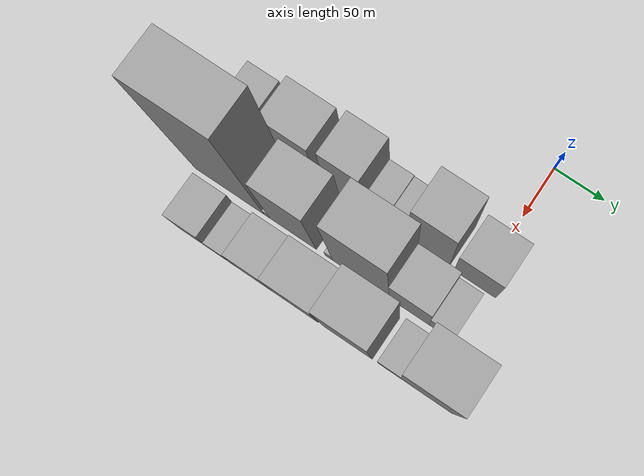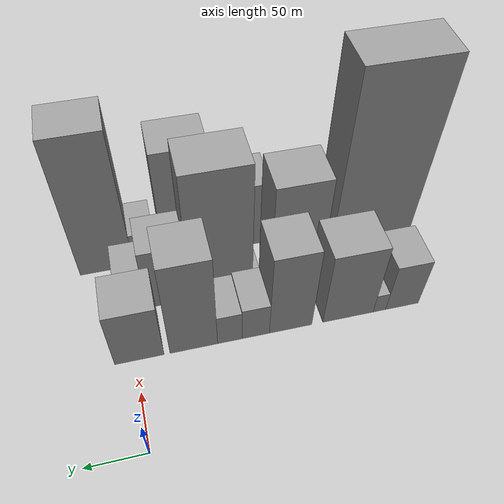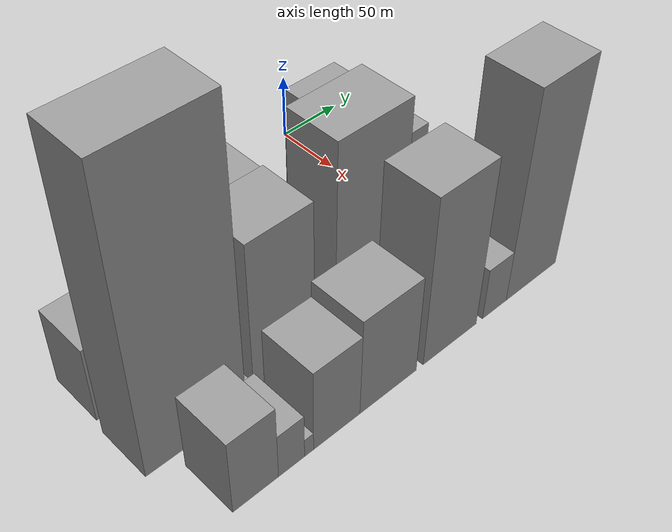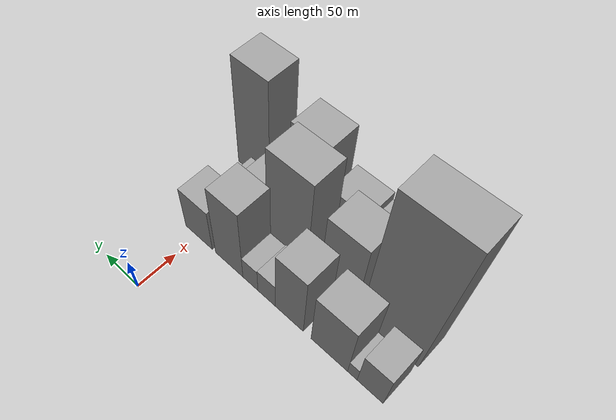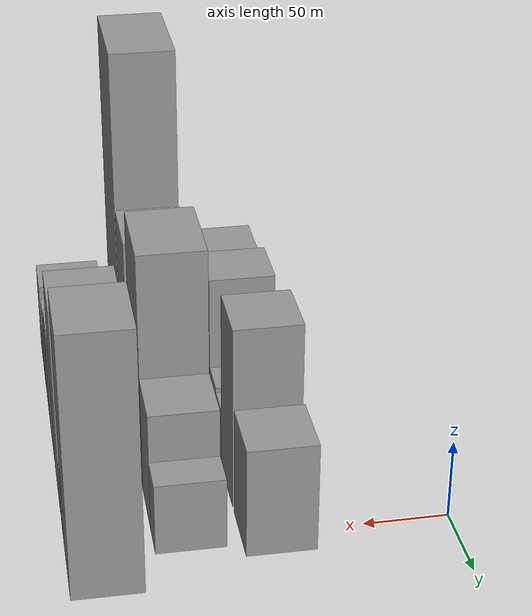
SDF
<sdf version="1.6">
 <world name="default">
  <model name="building_7">
   <static>1</static>
   <pose>100.0000 -233.9224 0 0.000000 0.000000 0.000000</pose>
   <link name="link">
    <pose>0 0 30.00 0 0 0</pose>
    <collision name="collision"><geometry><box><size>40.0000 30.6522 60.0000</size></box></geometry></collision>
    <visual name="visual">
     <cast_shadows>0</cast_shadows>
     <geometry><box><size>40.0000 30.6522 60.0000</size></box></geometry>
     <material>
      <script>
       <uri>model://grey_wall/materials/scripts</uri>
       <uri>model://grey_wall/materials/textures</uri>
       <name>vrc/grey_wall</name>
      </script>
     </material>
    </visual>
   </link>
  </model>
  <model name="building_8">
   <static>1</static>
   <pose>100.0000 -212.8381 0 0.000000 0.000000 0.000000</pose>
   <link name="link">
    <pose>0 0 12.00 0 0 0</pose>
    <collision name="collision"><geometry><box><size>40.0000 11.5164 24.0000</size></box></geometry></collision>
    <visual name="visual">
     <cast_shadows>0</cast_shadows>
     <geometry><box><size>40.0000 11.5164 24.0000</size></box></geometry>
     <material>
      <script>
       <uri>model://grey_wall/materials/scripts</uri>
       <uri>model://grey_wall/materials/textures</uri>
       <name>vrc/grey_wall</name>
      </script>
     </material>
    </visual>
   </link>
  </model>
  <model name="building_9">
   <static>1</static>
   <pose>100.0000 -184.1226 0 0.000000 0.000000 0.000000</pose>
   <link name="link">
    <pose>0 0 45.00 0 0 0</pose>
    <collision name="collision"><geometry><box><size>40.0000 45.9146 90.0000</size></box></geometry></collision>
    <visual name="visual">
     <cast_shadows>0</cast_shadows>
     <geometry><box><size>40.0000 45.9146 90.0000</size></box></geometry>
     <material>
      <script>
       <uri>model://grey_wall/materials/scripts</uri>
       <uri>model://grey_wall/materials/textures</uri>
       <name>vrc/grey_wall</name>
      </script>
     </material>
    </visual>
   </link>
  </model>
  <model name="building_10">
   <static>1</static>
   <pose>100.0000 -132.3108 0 0.000000 0.000000 0.000000</pose>
   <link name="link">
    <pose>0 0 51.00 0 0 0</pose>
    <collision name="collision"><geometry><box><size>40.0000 37.7090 102.0000</size></box></geometry></collision>
    <visual name="visual">
     <cast_shadows>0</cast_shadows>
     <geometry><box><size>40.0000 37.7090 102.0000</size></box></geometry>
     <material>
      <script>
       <uri>model://grey_wall/materials/scripts</uri>
       <uri>model://grey_wall/materials/textures</uri>
       <name>vrc/grey_wall</name>
      </script>
     </material>
    </visual>
   </link>
  </model>
  <model name="building_11">
   <static>1</static>
   <pose>100.0000 -101.5084 0 0.000000 0.000000 0.000000</pose>
   <link name="link">
    <pose>0 0 21.00 0 0 0</pose>
    <collision name="collision"><geometry><box><size>40.0000 23.8957 42.0000</size></box></geometry></collision>
    <visual name="visual">
     <cast_shadows>0</cast_shadows>
     <geometry><box><size>40.0000 23.8957 42.0000</size></box></geometry>
     <material>
      <script>
       <uri>model://grey_wall/materials/scripts</uri>
       <uri>model://grey_wall/materials/textures</uri>
       <name>vrc/grey_wall</name>
      </script>
     </material>
    </visual>
   </link>
  </model>
  <model name="building_12">
   <static>1</static>
   <pose>100.0000 -78.9548 0 0.000000 0.000000 0.000000</pose>
   <link name="link">
    <pose>0 0 19.50 0 0 0</pose>
    <collision name="collision"><geometry><box><size>40.0000 21.2116 39.0000</size></box></geometry></collision>
    <visual name="visual">
     <cast_shadows>0</cast_shadows>
     <geometry><box><size>40.0000 21.2116 39.0000</size></box></geometry>
     <material>
      <script>
       <uri>model://grey_wall/materials/scripts</uri>
       <uri>model://grey_wall/materials/textures</uri>
       <name>vrc/grey_wall</name>
      </script>
     </material>
    </visual>
   </link>
  </model>
  <model name="building_13">
   <static>1</static>
   <pose>100.0000 -48.1221 0 0.000000 0.000000 0.000000</pose>
   <link name="link">
    <pose>0 0 58.50 0 0 0</pose>
    <collision name="collision"><geometry><box><size>40.0000 40.4538 117.0000</size></box></geometry></collision>
    <visual name="visual">
     <cast_shadows>0</cast_shadows>
     <geometry><box><size>40.0000 40.4538 117.0000</size></box></geometry>
     <material>
      <script>
       <uri>model://grey_wall/materials/scripts</uri>
       <uri>model://grey_wall/materials/textures</uri>
       <name>vrc/grey_wall</name>
      </script>
     </material>
    </visual>
   </link>
  </model>
  <model name="building_14">
   <static>1</static>
   <pose>100.0000 -2.3943 0 0.000000 0.000000 0.000000</pose>
   <link name="link">
    <pose>0 0 34.50 0 0 0</pose>
    <collision name="collision"><geometry><box><size>40.0000 41.0018 69.0000</size></box></geometry></collision>
    <visual name="visual">
     <cast_shadows>0</cast_shadows>
     <geometry><box><size>40.0000 41.0018 69.0000</size></box></geometry>
     <material>
      <script>
       <uri>model://grey_wall/materials/scripts</uri>
       <uri>model://grey_wall/materials/textures</uri>
       <name>vrc/grey_wall</name>
      </script>
     </material>
    </visual>
   </link>
  </model>
  <model name="building_38">
   <static>1</static>
   <pose>149.0000 -216.0042 0 0.000000 0.000000 0.000000</pose>
   <link name="link">
    <pose>0 0 111.00 0 0 0</pose>
    <collision name="collision"><geometry><box><size>40.0000 71.0410 222.0000</size></box></geometry></collision>
    <visual name="visual">
     <cast_shadows>0</cast_shadows>
     <geometry><box><size>40.0000 71.0410 222.0000</size></box></geometry>
     <material>
      <script>
       <uri>model://grey_wall/materials/scripts</uri>
       <uri>model://grey_wall/materials/textures</uri>
       <name>vrc/grey_wall</name>
      </script>
     </material>
    </visual>
   </link>
  </model>
  <model name="building_39">
   <static>1</static>
   <pose>149.0000 -177.4119 0 0.000000 0.000000 0.000000</pose>
   <link name="link">
    <pose>0 0 7.50 0 0 0</pose>
    <collision name="collision"><geometry><box><size>40.0000 6.1436 15.0000</size></box></geometry></collision>
    <visual name="visual">
     <cast_shadows>0</cast_shadows>
     <geometry><box><size>40.0000 6.1436 15.0000</size></box></geometry>
     <material>
      <script>
       <uri>model://grey_wall/materials/scripts</uri>
       <uri>model://grey_wall/materials/textures</uri>
       <name>vrc/grey_wall</name>
      </script>
     </material>
    </visual>
   </link>
  </model>
  <model name="building_40">
   <static>1</static>
   <pose>149.0000 -150.7998 0 0.000000 0.000000 0.000000</pose>
   <link name="link">
    <pose>0 0 61.50 0 0 0</pose>
    <collision name="collision"><geometry><box><size>40.0000 47.0806 123.0000</size></box></geometry></collision>
    <visual name="visual">
     <cast_shadows>0</cast_shadows>
     <geometry><box><size>40.0000 47.0806 123.0000</size></box></geometry>
     <material>
      <script>
       <uri>model://grey_wall/materials/scripts</uri>
       <uri>model://grey_wall/materials/textures</uri>
       <name>vrc/grey_wall</name>
      </script>
     </material>
    </visual>
   </link>
  </model>
  <model name="building_41">
   <static>1</static>
   <pose>149.0000 -114.3229 0 0.000000 0.000000 0.000000</pose>
   <link name="link">
    <pose>0 0 9.00 0 0 0</pose>
    <collision name="collision"><geometry><box><size>40.0000 7.8732 18.0000</size></box></geometry></collision>
    <visual name="visual">
     <cast_shadows>0</cast_shadows>
     <geometry><box><size>40.0000 7.8732 18.0000</size></box></geometry>
     <material>
      <script>
       <uri>model://grey_wall/materials/scripts</uri>
       <uri>model://grey_wall/materials/textures</uri>
       <name>vrc/grey_wall</name>
      </script>
     </material>
    </visual>
   </link>
  </model>
  <model name="building_42">
   <static>1</static>
   <pose>149.0000 -82.2751 0 0.000000 0.000000 0.000000</pose>
   <link name="link">
    <pose>0 0 76.50 0 0 0</pose>
    <collision name="collision"><geometry><box><size>40.0000 56.2226 153.0000</size></box></geometry></collision>
    <visual name="visual">
     <cast_shadows>0</cast_shadows>
     <geometry><box><size>40.0000 56.2226 153.0000</size></box></geometry>
     <material>
      <script>
       <uri>model://grey_wall/materials/scripts</uri>
       <uri>model://grey_wall/materials/textures</uri>
       <name>vrc/grey_wall</name>
      </script>
     </material>
    </visual>
   </link>
  </model>
  <model name="building_43">
   <static>1</static>
   <pose>149.0000 -34.6621 0 0.000000 0.000000 0.000000</pose>
   <link name="link">
    <pose>0 0 37.50 0 0 0</pose>
    <collision name="collision"><geometry><box><size>40.0000 39.0034 75.0000</size></box></geometry></collision>
    <visual name="visual">
     <cast_shadows>0</cast_shadows>
     <geometry><box><size>40.0000 39.0034 75.0000</size></box></geometry>
     <material>
      <script>
       <uri>model://grey_wall/materials/scripts</uri>
       <uri>model://grey_wall/materials/textures</uri>
       <name>vrc/grey_wall</name>
      </script>
     </material>
    </visual>
   </link>
  </model>
  <model name="building_44">
   <static>1</static>
   <pose>149.0000 -3.6967 0 0.000000 0.000000 0.000000</pose>
   <link name="link">
    <pose>0 0 22.50 0 0 0</pose>
    <collision name="collision"><geometry><box><size>40.0000 22.9274 45.0000</size></box></geometry></collision>
    <visual name="visual">
     <cast_shadows>0</cast_shadows>
     <geometry><box><size>40.0000 22.9274 45.0000</size></box></geometry>
     <material>
      <script>
       <uri>model://grey_wall/materials/scripts</uri>
       <uri>model://grey_wall/materials/textures</uri>
       <name>vrc/grey_wall</name>
      </script>
     </material>
    </visual>
   </link>
  </model>
  <model name="building_73">
   <static>1</static>
   <pose>198.0000 -215.2844 0 0.000000 0.000000 0.000000</pose>
   <link name="link">
    <pose>0 0 30.00 0 0 0</pose>
    <collision name="collision"><geometry><box><size>40.0000 32.0693 60.0000</size></box></geometry></collision>
    <visual name="visual">
     <cast_shadows>0</cast_shadows>
     <geometry><box><size>40.0000 32.0693 60.0000</size></box></geometry>
     <material>
      <script>
       <uri>model://grey_wall/materials/scripts</uri>
       <uri>model://grey_wall/materials/textures</uri>
       <name>vrc/grey_wall</name>
      </script>
     </material>
    </visual>
   </link>
  </model>
  <model name="building_74">
   <static>1</static>
   <pose>198.0000 -189.6942 0 0.000000 0.000000 0.000000</pose>
   <link name="link">
    <pose>0 0 18.00 0 0 0</pose>
    <collision name="collision"><geometry><box><size>40.0000 19.1111 36.0000</size></box></geometry></collision>
    <visual name="visual">
     <cast_shadows>0</cast_shadows>
     <geometry><box><size>40.0000 19.1111 36.0000</size></box></geometry>
     <material>
      <script>
       <uri>model://grey_wall/materials/scripts</uri>
       <uri>model://grey_wall/materials/textures</uri>
       <name>vrc/grey_wall</name>
      </script>
     </material>
    </visual>
   </link>
  </model>
  <model name="building_75">
   <static>1</static>
   <pose>198.0000 -176.8130 0 0.000000 0.000000 0.000000</pose>
   <link name="link">
    <pose>0 0 7.50 0 0 0</pose>
    <collision name="collision"><geometry><box><size>40.0000 6.6513 15.0000</size></box></geometry></collision>
    <visual name="visual">
     <cast_shadows>0</cast_shadows>
     <geometry><box><size>40.0000 6.6513 15.0000</size></box></geometry>
     <material>
      <script>
       <uri>model://grey_wall/materials/scripts</uri>
       <uri>model://grey_wall/materials/textures</uri>
       <name>vrc/grey_wall</name>
      </script>
     </material>
    </visual>
   </link>
  </model>
  <model name="building_76">
   <static>1</static>
   <pose>198.0000 -155.6028 0 0.000000 0.000000 0.000000</pose>
   <link name="link">
    <pose>0 0 33.00 0 0 0</pose>
    <collision name="collision"><geometry><box><size>40.0000 35.7691 66.0000</size></box></geometry></collision>
    <visual name="visual">
     <cast_shadows>0</cast_shadows>
     <geometry><box><size>40.0000 35.7691 66.0000</size></box></geometry>
     <material>
      <script>
       <uri>model://grey_wall/materials/scripts</uri>
       <uri>model://grey_wall/materials/textures</uri>
       <name>vrc/grey_wall</name>
      </script>
     </material>
    </visual>
   </link>
  </model>
  <model name="building_77">
   <static>1</static>
   <pose>198.0000 -114.4940 0 0.000000 0.000000 0.000000</pose>
   <link name="link">
    <pose>0 0 39.00 0 0 0</pose>
    <collision name="collision"><geometry><box><size>40.0000 46.4484 78.0000</size></box></geometry></collision>
    <visual name="visual">
     <cast_shadows>0</cast_shadows>
     <geometry><box><size>40.0000 46.4484 78.0000</size></box></geometry>
     <material>
      <script>
       <uri>model://grey_wall/materials/scripts</uri>
       <uri>model://grey_wall/materials/textures</uri>
       <name>vrc/grey_wall</name>
      </script>
     </material>
    </visual>
   </link>
  </model>
  <model name="building_78">
   <static>1</static>
   <pose>198.0000 -61.6347 0 0.000000 0.000000 0.000000</pose>
   <link name="link">
    <pose>0 0 66.00 0 0 0</pose>
    <collision name="collision"><geometry><box><size>40.0000 47.2702 132.0000</size></box></geometry></collision>
    <visual name="visual">
     <cast_shadows>0</cast_shadows>
     <geometry><box><size>40.0000 47.2702 132.0000</size></box></geometry>
     <material>
      <script>
       <uri>model://grey_wall/materials/scripts</uri>
       <uri>model://grey_wall/materials/textures</uri>
       <name>vrc/grey_wall</name>
      </script>
     </material>
    </visual>
   </link>
  </model>
  <model name="building_79">
   <static>1</static>
   <pose>198.0000 -20.8276 0 0.000000 0.000000 0.000000</pose>
   <link name="link">
    <pose>0 0 21.00 0 0 0</pose>
    <collision name="collision"><geometry><box><size>40.0000 22.3441 42.0000</size></box></geometry></collision>
    <visual name="visual">
     <cast_shadows>0</cast_shadows>
     <geometry><box><size>40.0000 22.3441 42.0000</size></box></geometry>
     <material>
      <script>
       <uri>model://grey_wall/materials/scripts</uri>
       <uri>model://grey_wall/materials/textures</uri>
       <name>vrc/grey_wall</name>
      </script>
     </material>
    </visual>
   </link>
  </model>
  <model name="building_80">
   <static>1</static>
   <pose>198.0000 14.8404 0 0.000000 0.000000 0.000000</pose>
   <link name="link">
    <pose>0 0 81.00 0 0 0</pose>
    <collision name="collision"><geometry><box><size>40.0000 48.9918 162.0000</size></box></geometry></collision>
    <visual name="visual">
     <cast_shadows>0</cast_shadows>
     <geometry><box><size>40.0000 48.9918 162.0000</size></box></geometry>
     <material>
      <script>
       <uri>model://grey_wall/materials/scripts</uri>
       <uri>model://grey_wall/materials/textures</uri>
       <name>vrc/grey_wall</name>
      </script>
     </material>
    </visual>
   </link>
  </model>
 </world>
</sdf>
